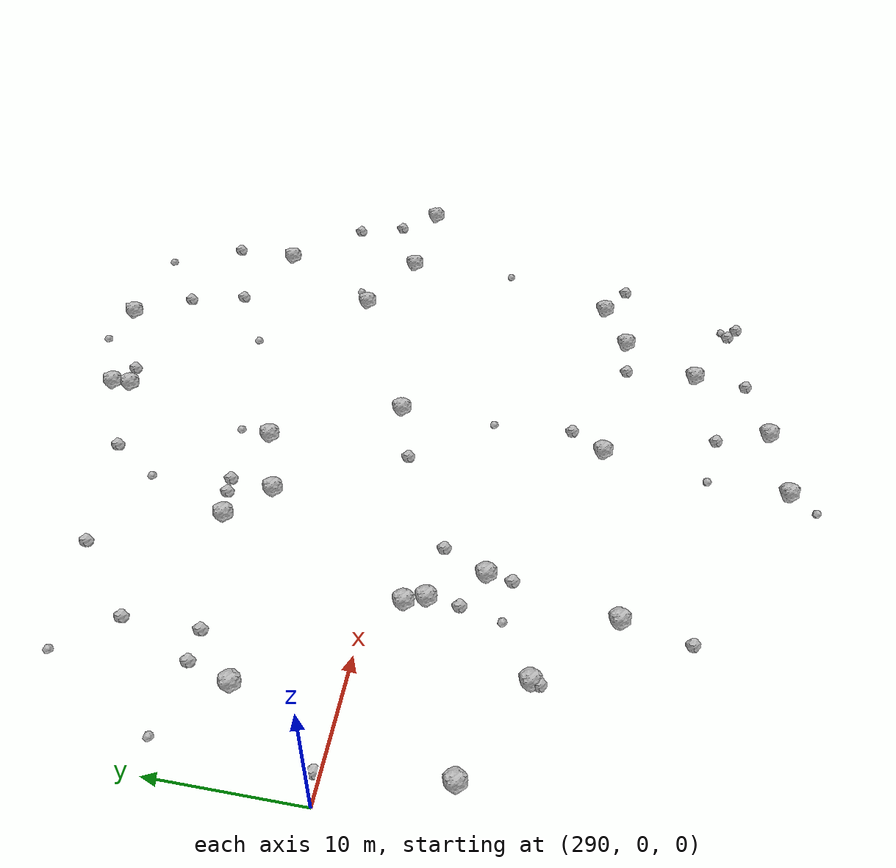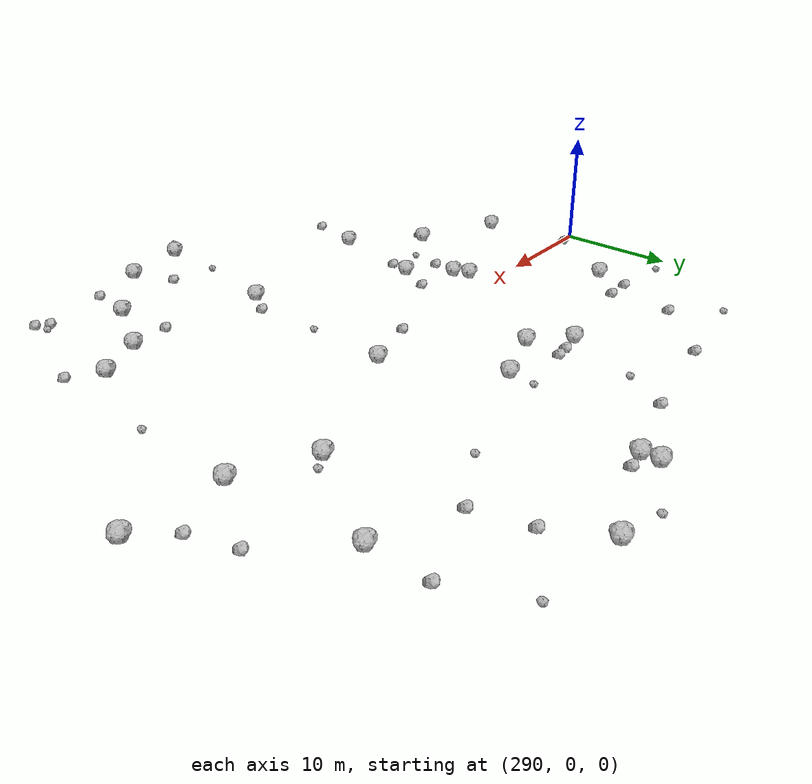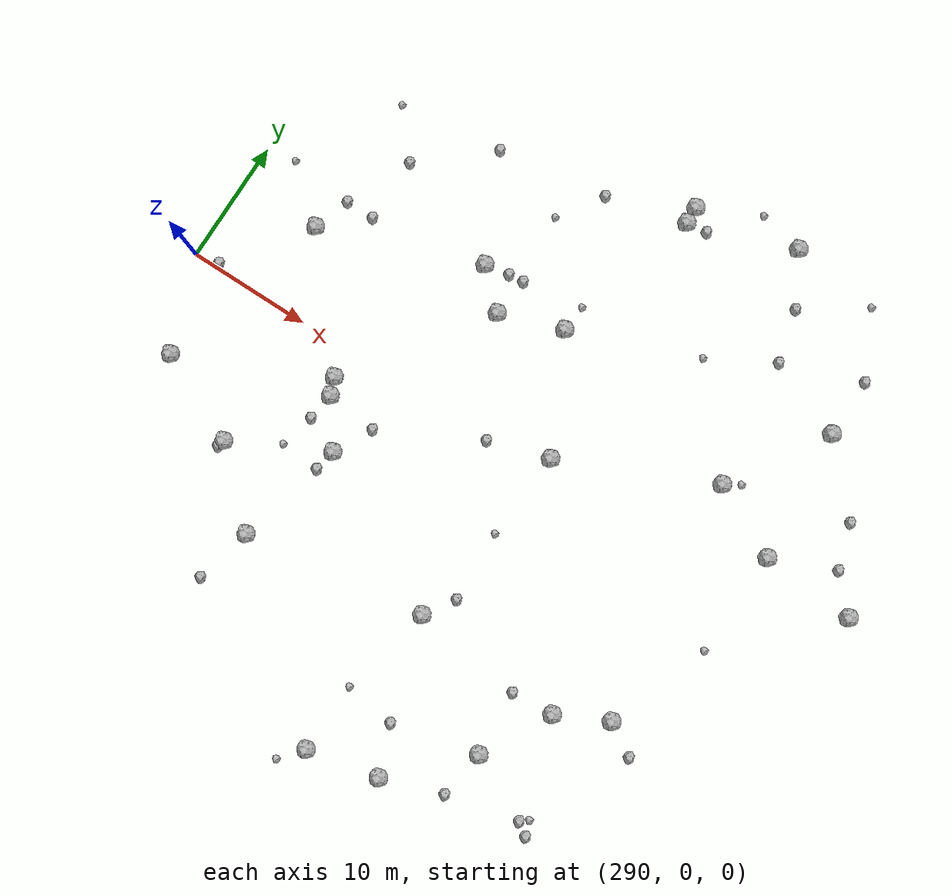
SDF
<sdf version="1.6">
 <world name="default">
  <include><uri>model://sun</uri></include>
  <model name="rock1_8_3">
   <include><uri>model://rock1</uri><pose>320.70278435382147 24.185368772532378 0.5 0 0 0</pose></include>
  </model>
  <model name="rock1_8_4">
   <include><uri>model://rock1</uri><pose>347.39221303462114 3.60054372743312 0.5 0 0 0</pose></include>
  </model>
  <model name="rock1_8_5">
   <include><uri>model://rock1</uri><pose>338.9374951437237 14.860473274673026 0.5 0 0 0</pose></include>
  </model>
  <model name="rock1_8_6">
   <include><uri>model://rock1</uri><pose>305.03307166785913 -3.5951698577200872 0.5 0 0 0</pose></include>
  </model>
  <model name="rock1_8_7">
   <include><uri>model://rock1</uri><pose>321.8774997809543 1.5283899619702552 0.5 0 0 0</pose></include>
  </model>
  <model name="rock1_8_8">
   <include><uri>model://rock1</uri><pose>324.1087217055771 -25.72252991604445 0.5 0 0 0</pose></include>
  </model>
  <model name="rock1_8_9">
   <include><uri>model://rock1</uri><pose>320.76174130383345 22.790815204764897 0.5 0 0 0</pose></include>
  </model>
  <model name="rock1_8_10">
   <include><uri>model://rock1</uri><pose>320.1626036360289 -13.786298981926617 0.5 0 0 0</pose></include>
  </model>
  <model name="rock1_8_11">
   <include><uri>model://rock1</uri><pose>304.48268884391666 -2.218269085552201 0.5 0 0 0</pose></include>
  </model>
  <model name="rock1_8_12">
   <include><uri>model://rock1</uri><pose>296.7044323186341 6.842088368275078 0.5 0 0 0</pose></include>
  </model>
  <model name="rock1_8_13">
   <include><uri>model://rock1</uri><pose>332.49160166613444 -14.700185798002689 0.5 0 0 0</pose></include>
  </model>
  <model name="rock1_8_14">
   <include><uri>model://rock1</uri><pose>333.96117065901996 6.99037818975841 0.5 0 0 0</pose></include>
  </model>
  <model name="rock1_8_15">
   <include><uri>model://rock1</uri><pose>292.902936057567 -7.590157527159349 0.5 0 0 0</pose></include>
  </model>
  <model name="rock1_8_16">
   <include><uri>model://rock1</uri><pose>317.3596425007189 10.548964781655982 0.5 0 0 0</pose></include>
  </model>
  <model name="rock1_8_17">
   <include><uri>model://rock1</uri><pose>312.27578843551066 8.800080486256043 0.5 0 0 0</pose></include>
  </model>
  <model name="rock1_8_18">
   <include><uri>model://rock1</uri><pose>309.4001883704684 11.478547469992328 0.5 0 0 0</pose></include>
  </model>
  <model name="rock1_8_19">
   <include><uri>model://rock1</uri><pose>307.60676637433505 -7.103974677225761 0.5 0 0 0</pose></include>
  </model>
  <model name="rock1_8_20">
   <include><uri>model://rock1</uri><pose>339.823059922638 4.110294494864611 0.5 0 0 0</pose></include>
  </model>
  <model name="rock1_8_21">
   <include><uri>model://rock1</uri><pose>318.392824134967 -26.925026538182276 0.5 0 0 0</pose></include>
  </model>
  <model name="rock1_8_22">
   <include><uri>model://rock1</uri><pose>336.522424813522 -12.702595147996337 0.5 0 0 0</pose></include>
  </model>
  <model name="rock1_8_23">
   <include><uri>model://rock1</uri><pose>305.5515112812767 -15.944331632046493 0.5 0 0 0</pose></include>
  </model>
  <model name="rock1_8_24">
   <include><uri>model://rock1</uri><pose>329.15942857429167 25.750446081167873 0.5 0 0 0</pose></include>
  </model>
  <model name="rock1_8_25">
   <include><uri>model://rock1</uri><pose>300.1226947547221 -10.9502189336372 0.5 0 0 0</pose></include>
  </model>
  <model name="rock1_8_26">
   <include><uri>model://rock1</uri><pose>329.48019605638086 -20.206084971892043 0.5 0 0 0</pose></include>
  </model>
  <model name="rock2_8_0">
   <include><uri>model://rock2</uri><pose>335.69428064469037 -23.40253610283208 0.3 0 0 0</pose></include>
  </model>
  <model name="rock2_8_1">
   <include><uri>model://rock2</uri><pose>299.9054135784201 -11.505869043593645 0.3 0 0 0</pose></include>
  </model>
  <model name="rock2_8_2">
   <include><uri>model://rock2</uri><pose>331.45658708666224 21.628474611913788 0.3 0 0 0</pose></include>
  </model>
  <model name="rock2_8_3">
   <include><uri>model://rock2</uri><pose>312.5746212528719 11.985062723112947 0.3 0 0 0</pose></include>
  </model>
  <model name="rock2_8_4">
   <include><uri>model://rock2</uri><pose>304.69291325950735 -5.81536828854771 0.3 0 0 0</pose></include>
  </model>
  <model name="rock2_8_5">
   <include><uri>model://rock2</uri><pose>299.99135831438304 15.130455524894408 0.3 0 0 0</pose></include>
  </model>
  <model name="rock2_8_6">
   <include><uri>model://rock2</uri><pose>344.8774227893193 6.255158627095277 0.3 0 0 0</pose></include>
  </model>
  <model name="rock2_8_7">
   <include><uri>model://rock2</uri><pose>314.2622880353449 21.186548337362602 0.3 0 0 0</pose></include>
  </model>
  <model name="rock2_8_8">
   <include><uri>model://rock2</uri><pose>332.59092906121754 17.381135228727622 0.3 0 0 0</pose></include>
  </model>
  <model name="rock2_8_9">
   <include><uri>model://rock2</uri><pose>305.36294615906803 19.813183475882184 0.3 0 0 0</pose></include>
  </model>
  <model name="rock2_8_10">
   <include><uri>model://rock2</uri><pose>297.6307914528039 9.86390414399959 0.3 0 0 0</pose></include>
  </model>
  <model name="rock2_8_11">
   <include><uri>model://rock2</uri><pose>329.0781180543657 -14.951426160299642 0.3 0 0 0</pose></include>
  </model>
  <model name="rock2_8_12">
   <include><uri>model://rock2</uri><pose>339.0602293261035 -14.260071213792624 0.3 0 0 0</pose></include>
  </model>
  <model name="rock2_8_13">
   <include><uri>model://rock2</uri><pose>309.14883987450514 -4.017580315200565 0.3 0 0 0</pose></include>
  </model>
  <model name="rock2_8_14">
   <include><uri>model://rock2</uri><pose>304.43107243888153 -20.55362389034226 0.3 0 0 0</pose></include>
  </model>
  <model name="rock2_8_15">
   <include><uri>model://rock2</uri><pose>316.9647593852555 0.03984570648889374 0.3 0 0 0</pose></include>
  </model>
  <model name="rock2_8_16">
   <include><uri>model://rock2</uri><pose>334.6997910365186 -22.720015060216703 0.3 0 0 0</pose></include>
  </model>
  <model name="rock2_8_17">
   <include><uri>model://rock2</uri><pose>322.6080076829808 -21.86890555742722 0.3 0 0 0</pose></include>
  </model>
  <model name="rock2_8_18">
   <include><uri>model://rock2</uri><pose>338.9642106047439 19.674136232305536 0.3 0 0 0</pose></include>
  </model>
  <model name="rock2_8_19">
   <include><uri>model://rock2</uri><pose>307.25252481986183 -8.875171709885326 0.3 0 0 0</pose></include>
  </model>
  <model name="rock2_8_20">
   <include><uri>model://rock2</uri><pose>328.9293524329998 -24.078620472596363 0.3 0 0 0</pose></include>
  </model>
  <model name="rock2_8_21">
   <include><uri>model://rock2</uri><pose>291.9696611698573 0.39320657845453866 0.3 0 0 0</pose></include>
  </model>
  <model name="rock2_8_22">
   <include><uri>model://rock2</uri><pose>343.71450468422074 9.841434122833405 0.3 0 0 0</pose></include>
  </model>
  <model name="rock2_8_23">
   <include><uri>model://rock2</uri><pose>311.3520791477968 11.86909319778023 0.3 0 0 0</pose></include>
  </model>
  <model name="rock2_8_24">
   <include><uri>model://rock2</uri><pose>322.42196090101356 23.04623815656793 0.3 0 0 0</pose></include>
  </model>
  <model name="rock2_8_25">
   <include><uri>model://rock2</uri><pose>321.708819519371 -11.385360336545993 0.3 0 0 0</pose></include>
  </model>
  <model name="rock2_8_26">
   <include><uri>model://rock2</uri><pose>299.973321662812 9.862119826580575 0.3 0 0 0</pose></include>
  </model>
  <model name="rock3_8_0">
   <include><uri>model://rock3</uri><pose>325.4791136073207 26.56656861902858 0.2 0 0 0</pose></include>
  </model>
  <model name="rock3_8_1">
   <include><uri>model://rock3</uri><pose>311.88621160817183 17.631936183552625 0.2 0 0 0</pose></include>
  </model>
  <model name="rock3_8_2">
   <include><uri>model://rock3</uri><pose>296.9090384588084 18.672727615194603 0.2 0 0 0</pose></include>
  </model>
  <model name="rock3_8_3">
   <include><uri>model://rock3</uri><pose>335.2005725841425 7.777102451993137 0.2 0 0 0</pose></include>
  </model>
  <model name="rock3_8_4">
   <include><uri>model://rock3</uri><pose>327.48402832962387 14.483678898096557 0.2 0 0 0</pose></include>
  </model>
  <model name="rock3_8_5">
   <include><uri>model://rock3</uri><pose>318.5020316903765 -21.31982665317097 0.2 0 0 0</pose></include>
  </model>
  <model name="rock3_8_6">
   <include><uri>model://rock3</uri><pose>316.86359713289545 -28.800315657130934 0.2 0 0 0</pose></include>
  </model>
  <model name="rock3_8_7">
   <include><uri>model://rock3</uri><pose>335.2945109574078 -22.25356826266601 0.2 0 0 0</pose></include>
  </model>
  <model name="rock3_8_8">
   <include><uri>model://rock3</uri><pose>339.5514157124801 -4.461082481489353 0.2 0 0 0</pose></include>
  </model>
  <model name="rock3_8_9">
   <include><uri>model://rock3</uri><pose>292.3849787819143 10.377424635563997 0.2 0 0 0</pose></include>
  </model>
  <model name="rock3_8_10">
   <include><uri>model://rock3</uri><pose>336.32438300261754 24.938558055899897 0.2 0 0 0</pose></include>
  </model>
  <model name="rock3_8_11">
   <include><uri>model://rock3</uri><pose>317.4940973267829 12.754407868378337 0.2 0 0 0</pose></include>
  </model>
  <model name="rock3_8_12">
   <include><uri>model://rock3</uri><pose>321.40881533634985 -5.635624418522394 0.2 0 0 0</pose></include>
  </model>
  <model name="rock3_8_13">
   <include><uri>model://rock3</uri><pose>304.0103007137378 -8.692366132381323 0.2 0 0 0</pose></include>
  </model>
 </world>
</sdf>
